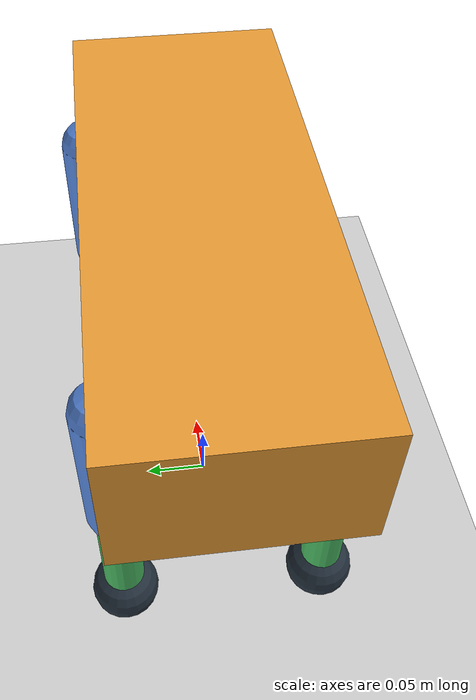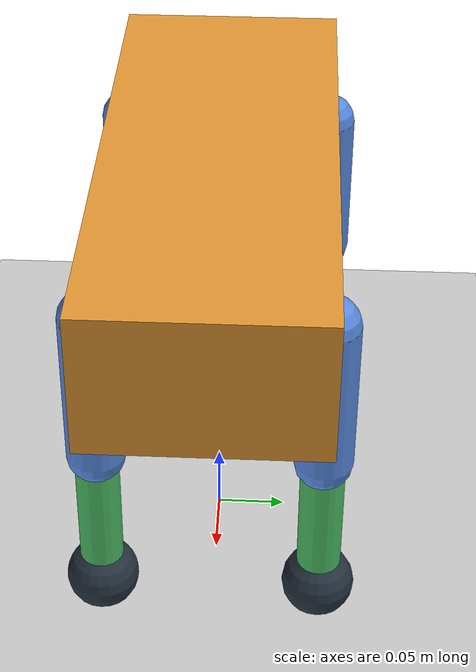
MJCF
<mujoco model="dog_walk">
  <compiler angle="radian"/>
  <option timestep="0.01" gravity="0 0 -9.81"/>

  <default>
    <geom rgba="0.35 0.55 0.9 1" friction="1.0 0.005 0.0001"/>
    <joint armature="0.02" damping="0.3" limited="true"/>
  </default>

  <worldbody>
    <geom name="floor" type="plane" size="10 3 0.1" rgba="0.8 0.8 0.8 1"/>

    <body name="torso" pos="0 0 0.27">
      <freejoint name="root"/>
      <inertial mass="1.2" pos="0 0 0" diaginertia="0.03 0.09 0.1"/>
      <geom name="torso_geom" type="box" size="0.2 0.08 0.05" rgba="0.9 0.6 0.2 1"/>
      <site name="torso_site" pos="0 0 0" type="sphere" size="0.01"/>

      <body name="FR_hip" pos="0.13 -0.075 0">
        <inertial mass="0.15" pos="0 0 -0.055" diaginertia="0.0002 0.001 0.001"/>
        <geom name="FR_thigh" type="capsule" size="0.02" fromto="0 0 0 0 0 -0.11" rgba="0.35 0.55 0.9 1"/>
        <joint name="FR_hip_j" type="hinge" axis="0 1 0" range="-0.9 0.9"/>
        <body name="FR_shank" pos="0 0 -0.11">
          <inertial mass="0.1" pos="0 0 -0.055" diaginertia="0.0001 0.0008 0.0008"/>
          <geom name="FR_shank" type="capsule" size="0.015" fromto="0 0 0 0 0 -0.11" rgba="0.3 0.75 0.4 1"/>
          <joint name="FR_knee_j" type="hinge" axis="0 1 0" range="-0.3 1.2"/>
          <body name="FR_foot" pos="0 0 -0.11">
            <inertial mass="0.03" pos="0 0 0" diaginertia="0.0001 0.0001 0.0001"/>
            <geom name="FR_foot" type="sphere" size="0.025" friction="1.2 0.005 0.0001" rgba="0.15 0.2 0.25 1"/>
          </body>
        </body>
      </body>

      <body name="FL_hip" pos="0.13 0.075 0">
        <inertial mass="0.15" pos="0 0 -0.055" diaginertia="0.0002 0.001 0.001"/>
        <geom name="FL_thigh" type="capsule" size="0.02" fromto="0 0 0 0 0 -0.11" rgba="0.35 0.55 0.9 1"/>
        <joint name="FL_hip_j" type="hinge" axis="0 1 0" range="-0.9 0.9"/>
        <body name="FL_shank" pos="0 0 -0.11">
          <inertial mass="0.1" pos="0 0 -0.055" diaginertia="0.0001 0.0008 0.0008"/>
          <geom name="FL_shank" type="capsule" size="0.015" fromto="0 0 0 0 0 -0.11" rgba="0.3 0.75 0.4 1"/>
          <joint name="FL_knee_j" type="hinge" axis="0 1 0" range="-0.3 1.2"/>
          <body name="FL_foot" pos="0 0 -0.11">
            <inertial mass="0.03" pos="0 0 0" diaginertia="0.0001 0.0001 0.0001"/>
            <geom name="FL_foot" type="sphere" size="0.025" friction="1.2 0.005 0.0001" rgba="0.15 0.2 0.25 1"/>
          </body>
        </body>
      </body>

      <body name="RR_hip" pos="-0.13 -0.075 0">
        <inertial mass="0.15" pos="0 0 -0.055" diaginertia="0.0002 0.001 0.001"/>
        <geom name="RR_thigh" type="capsule" size="0.02" fromto="0 0 0 0 0 -0.11" rgba="0.35 0.55 0.9 1"/>
        <joint name="RR_hip_j" type="hinge" axis="0 1 0" range="-0.9 0.9"/>
        <body name="RR_shank" pos="0 0 -0.11">
          <inertial mass="0.1" pos="0 0 -0.055" diaginertia="0.0001 0.0008 0.0008"/>
          <geom name="RR_shank" type="capsule" size="0.015" fromto="0 0 0 0 0 -0.11" rgba="0.3 0.75 0.4 1"/>
          <joint name="RR_knee_j" type="hinge" axis="0 1 0" range="-0.3 1.2"/>
          <body name="RR_foot" pos="0 0 -0.11">
            <inertial mass="0.03" pos="0 0 0" diaginertia="0.0001 0.0001 0.0001"/>
            <geom name="RR_foot" type="sphere" size="0.025" friction="1.2 0.005 0.0001" rgba="0.15 0.2 0.25 1"/>
          </body>
        </body>
      </body>

      <body name="RL_hip" pos="-0.13 0.075 0">
        <inertial mass="0.15" pos="0 0 -0.055" diaginertia="0.0002 0.001 0.001"/>
        <geom name="RL_thigh" type="capsule" size="0.02" fromto="0 0 0 0 0 -0.11" rgba="0.35 0.55 0.9 1"/>
        <joint name="RL_hip_j" type="hinge" axis="0 1 0" range="-0.9 0.9"/>
        <body name="RL_shank" pos="0 0 -0.11">
          <inertial mass="0.1" pos="0 0 -0.055" diaginertia="0.0001 0.0008 0.0008"/>
          <geom name="RL_shank" type="capsule" size="0.015" fromto="0 0 0 0 0 -0.11" rgba="0.3 0.75 0.4 1"/>
          <joint name="RL_knee_j" type="hinge" axis="0 1 0" range="-0.3 1.2"/>
          <body name="RL_foot" pos="0 0 -0.11">
            <inertial mass="0.03" pos="0 0 0" diaginertia="0.0001 0.0001 0.0001"/>
            <geom name="RL_foot" type="sphere" size="0.025" friction="1.2 0.005 0.0001" rgba="0.15 0.2 0.25 1"/>
          </body>
        </body>
      </body>
    </body>
  </worldbody>

  <actuator>
    <motor name="FR_hip_m" joint="FR_hip_j" gear="25" ctrllimited="true" ctrlrange="-1 1"/>
    <motor name="FL_hip_m" joint="FL_hip_j" gear="25" ctrllimited="true" ctrlrange="-1 1"/>
    <motor name="RR_hip_m" joint="RR_hip_j" gear="25" ctrllimited="true" ctrlrange="-1 1"/>
    <motor name="RL_hip_m" joint="RL_hip_j" gear="25" ctrllimited="true" ctrlrange="-1 1"/>
    <motor name="FR_knee_m" joint="FR_knee_j" gear="12" ctrllimited="true" ctrlrange="-1 1"/>
    <motor name="FL_knee_m" joint="FL_knee_j" gear="12" ctrllimited="true" ctrlrange="-1 1"/>
    <motor name="RR_knee_m" joint="RR_knee_j" gear="12" ctrllimited="true" ctrlrange="-1 1"/>
    <motor name="RL_knee_m" joint="RL_knee_j" gear="12" ctrllimited="true" ctrlrange="-1 1"/>
  </actuator>

  <sensor>
    <jointpos name="FR_hip_s" joint="FR_hip_j"/>
    <jointpos name="FL_hip_s" joint="FL_hip_j"/>
    <jointpos name="RR_hip_s" joint="RR_hip_j"/>
    <jointpos name="RL_hip_s" joint="RL_hip_j"/>
    <jointpos name="FR_knee_s" joint="FR_knee_j"/>
    <jointpos name="FL_knee_s" joint="FL_knee_j"/>
    <jointpos name="RR_knee_s" joint="RR_knee_j"/>
    <jointpos name="RL_knee_s" joint="RL_knee_j"/>
    <framequat name="torso_quat" objtype="site" objname="torso_site"/>
    <framepos name="torso_pos" objtype="site" objname="torso_site"/>
  </sensor>
</mujoco>
